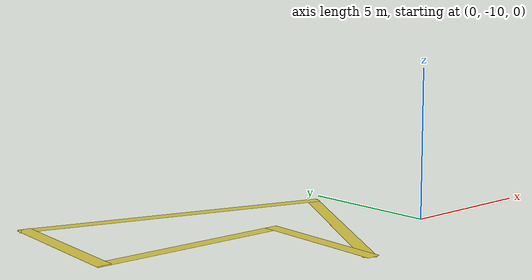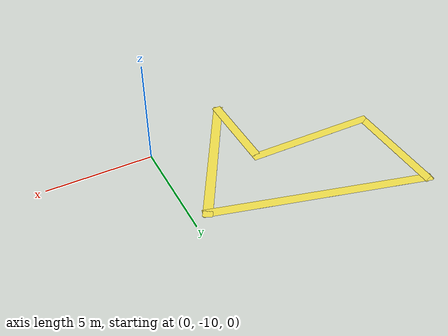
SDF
<?xml version='1.0'?>
<sdf version='1.6'>
  <model name='yellowPath'>
    <pose frame=''>-5.61744 -7.40009 0 0 -0 0</pose>
    <link name='Wall_20'>
      <collision name='Wall_20_Collision'>
        <geometry>
          <box>
            <size>5.30031 0.45 0.001</size>
          </box>
        </geometry>
        <pose frame=''>0 0 0.0005 0 -0 0</pose>
      </collision>
      <visual name='Wall_20_Visual'>
        <pose frame=''>0 0 0.0005 0 -0 0</pose>
        <geometry>
          <box>
            <size>5.30031 0.45 0.001</size>
          </box>
        </geometry>
        <material>
          <script>
            <uri>file://media/materials/scripts/gazebo.material</uri>
            <name>Gazebo/Grey</name>
          </script>
          <ambient>0.988235 0.913725 0.309804 1</ambient>
        </material>
        <meta>
          <layer>0</layer>
        </meta>
      </visual>
      <pose frame=''>-4.90356 2.06609 0 0 -0 -1.5708</pose>
    </link>
    <link name='Wall_21'>
      <collision name='Wall_21_Collision'>
        <geometry>
          <box>
            <size>6.54963 0.45 0.001</size>
          </box>
        </geometry>
        <pose frame=''>0 0 0.0005 0 -0 0</pose>
      </collision>
      <visual name='Wall_21_Visual'>
        <pose frame=''>0 0 0.0005 0 -0 0</pose>
        <geometry>
          <box>
            <size>6.54963 0.45 0.001</size>
          </box>
        </geometry>
        <material>
          <script>
            <uri>file://media/materials/scripts/gazebo.material</uri>
            <name>Gazebo/Grey</name>
          </script>
          <ambient>0.988235 0.913725 0.309804 1</ambient>
        </material>
        <meta>
          <layer>0</layer>
        </meta>
      </visual>
      <pose frame=''>-1.85356 -0.358906 0 0 -0 0</pose>
    </link>
    <link name='Wall_22'>
      <collision name='Wall_22_Collision'>
        <geometry>
          <box>
            <size>4.55 0.45 0.001</size>
          </box>
        </geometry>
        <pose frame=''>0 0 0.0005 0 -0 0</pose>
      </collision>
      <visual name='Wall_22_Visual'>
        <pose frame=''>0 0 0.0005 0 -0 0</pose>
        <geometry>
          <box>
            <size>4.55 0.45 0.001</size>
          </box>
        </geometry>
        <material>
          <script>
            <uri>file://media/materials/scripts/gazebo.material</uri>
            <name>Gazebo/Grey</name>
          </script>
          <ambient>0.988235 0.913725 0.309804 1</ambient>
        </material>
        <meta>
          <layer>0</layer>
        </meta>
      </visual>
      <pose frame=''>1.19644 -2.40891 0 0 -0 -1.5708</pose>
    </link>
    <link name='Wall_23'>
      <collision name='Wall_23_Collision'>
        <geometry>
          <box>
            <size>7.79955 0.45 0.001</size>
          </box>
        </geometry>
        <pose frame=''>0 0 0.0005 0 -0 0</pose>
      </collision>
      <visual name='Wall_23_Visual'>
        <pose frame=''>0 0 0.0005 0 -0 0</pose>
        <geometry>
          <box>
            <size>7.79955 0.45 0.001</size>
          </box>
        </geometry>
        <material>
          <script>
            <uri>file://media/materials/scripts/gazebo.material</uri>
            <name>Gazebo/Grey</name>
          </script>
          <ambient>0.988235 0.913725 0.309804 1</ambient>
        </material>
        <meta>
          <layer>0</layer>
        </meta>
      </visual>
      <pose frame=''>3.03394 -1.27641 0 0 -0 1.04718</pose>
    </link>
    <link name='Wall_24'>
      <collision name='Wall_24_Collision'>
        <geometry>
          <box>
            <size>10.5613 0.45 0.001</size>
          </box>
        </geometry>
        <pose frame=''>0 0 0.0005 0 -0 0</pose>
      </collision>
      <visual name='Wall_24_Visual'>
        <pose frame=''>0 0 0.0005 0 -0 0</pose>
        <geometry>
          <box>
            <size>10.5613 0.45 0.001</size>
          </box>
        </geometry>
        <material>
          <script>
            <uri>file://media/materials/scripts/gazebo.material</uri>
            <name>Gazebo/Grey</name>
          </script>
          <ambient>0.988235 0.913725 0.309804 1</ambient>
        </material>
        <meta>
          <layer>0</layer>
        </meta>
      </visual>
      <pose frame=''>-0.016064 3.19859 0 0 -0 2.88306</pose>
    </link>
    <static>1</static>
  </model>
</sdf>
